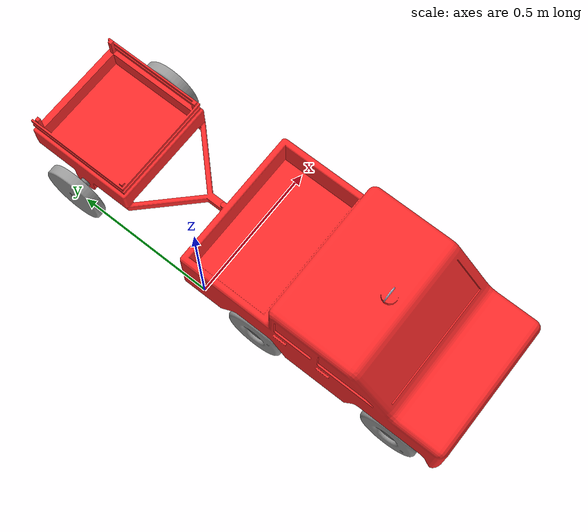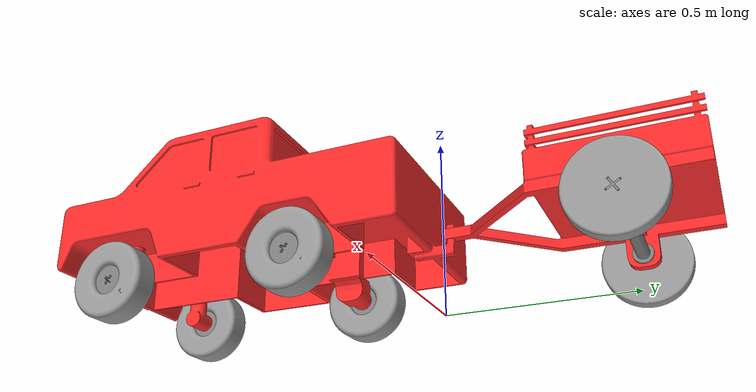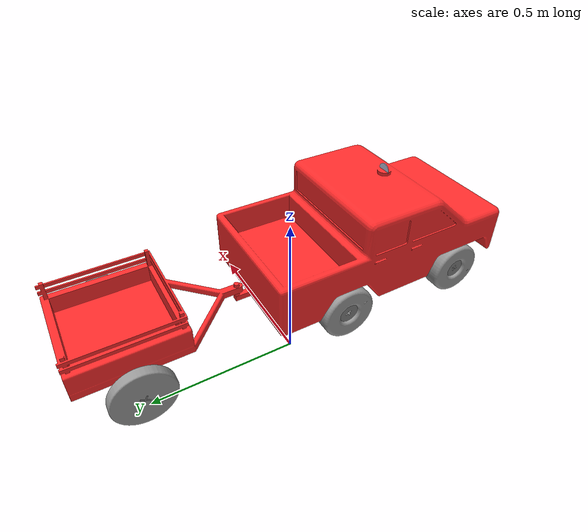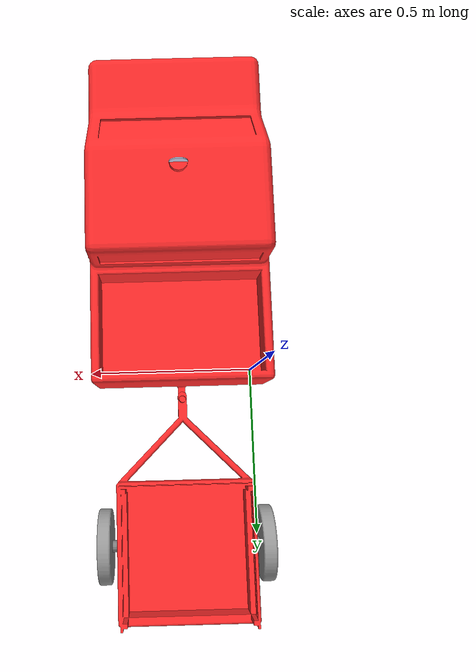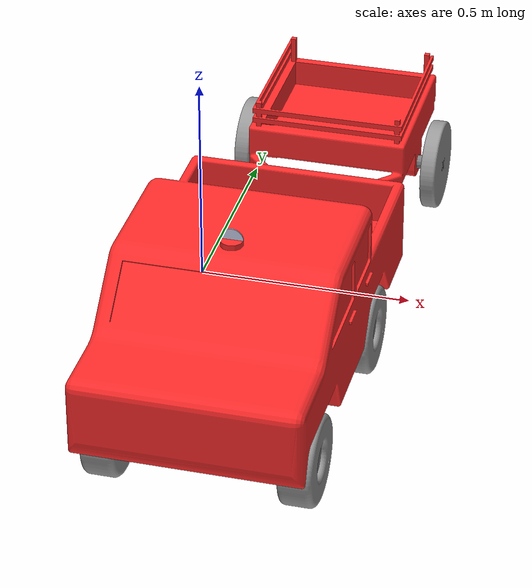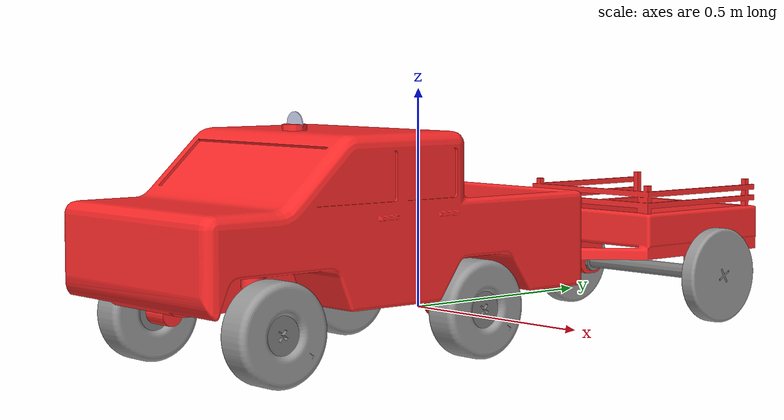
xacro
<?xml version="1.0" ?>
<robot
  name="project_1_group_2" xmlns:xacro="http://ros.org/wiki/xacro">

  <xacro:macro name="red_color">
      <visual>
      <material>
          <ambient>1 0.168627450980392 0.168627450980392 1</ambient>
          <diffuse>1 0.168627450980392 0.168627450980392 1</diffuse>
          <specular>0.1 0.1 0.1 1</specular>
          <emissive>0 0 0 0</emissive>
      </material>
      </visual>
  </xacro:macro>

  <xacro:macro name="grey_color">
      <visual>
      <material>
          <ambient>0.8 0.558823529411765 0.1 1</ambient>
          <diffuse>0.8 0.558823529411765 0.1 1</diffuse>
          <specular>0.1 0.1 0.1 1</specular>
          <emissive>0 0 0 0</emissive>
      </material>
      </visual>
  </xacro:macro>

  <xacro:macro name="black_color">
      <visual>
      <material>
          <ambient>0.6 0.6 0.6 1</ambient>
          <diffuse>0.6 0.6 0.6 1</diffuse>
          <specular>0.1 0.1 0.1 1</specular>
          <emissive>0 0 0 0</emissive>
      </material>
      </visual>
  </xacro:macro>

  # Add this before base link
  <link name="dummy_link"></link>

  <link
    name="base_link">
    <inertial>
      <origin
        xyz="0.219542184923656 0.253147662670064 0.488981343790689"
        rpy="0 0 0" />
      <mass
        value="1" />
      <inertia
        ixx="3.47686976214323"
        ixy="1.28363813560472E-06"
        ixz="-8.67881754875189E-06"
        iyy="4.33091580677011"
        iyz="-0.0565812633669083"
        izz="1.5150564663539" />
    </inertial>
    <visual>
      <origin
        xyz="0 0 0"
        rpy="0 0 0" />
      <geometry>
        <mesh
          filename="package://project_1_group_2/meshes/base_link.STL" />
      </geometry>
      <material
        name="">
        <color
          rgba="1 0.168627450980392 0.168627450980392 1" />
      </material>
    </visual>
    <collision>
      <origin
        xyz="0 0 0"
        rpy="0 0 0" />
      <geometry>
        <mesh
          filename="package://project_1_group_2/meshes/base_link.STL" />
      </geometry>
    </collision>
  </link>

    # Add this after base link
  <joint
    name="dummy_joint"
    type="fixed">
    <origin
      rpy="0 0 0"
      xyz="0 0 0" />
    <parent
      link="dummy_link"/>
    <child
      link="base_link"/>
  </joint>

  <link
    name="steering_wheel_1">
    <inertial>
      <origin
        xyz="2.86075080291326E-08 -0.0749063419355981 -0.00254051949689645"
        rpy="0 0 0" />
      <mass
        value="15.295424107267105" />
      <inertia
        ixx="0.000710809060839366"
        ixy="-1.53957020615015E-10"
        ixz="-3.53322320543782E-10"
        iyy="0.000104054571155282"
        iyz="3.85934455800395E-05"
        izz="0.000690101015602262" />
    </inertial>
    <visual>
      <origin
        xyz="0 0 0"
        rpy="0 0 0" />
      <geometry>
        <mesh
          filename="package://project_1_group_2/meshes/steering_wheel_1.STL" />
      </geometry>
      <material
        name="">
        <color
          rgba="1 0.168627450980392 0.168627450980392 1" />
      </material>
    </visual>
    <collision>
      <origin
        xyz="0 0 0"
        rpy="0 0 0" />
      <geometry>
        <mesh
          filename="package://project_1_group_2/meshes/steering_wheel_1.STL" />
      </geometry>
    </collision>
  </link>
  <joint
    name="steering_joint_1"
    type="revolute">
    <origin
      xyz="0.070952 -0.7342 0.035594"
      rpy="-1.5708 0 -1.5708" />
    <parent
      link="base_link" />
    <child
      link="steering_wheel_1" />
    <axis
      xyz="0 -1 0" />
    <limit
      lower="-3.14"
      upper="3.14"
      effort="10"
      velocity="10" />
  </joint>
  <link
    name="wheel_1">
    <inertial>
      <origin
        xyz="0 0.0251005990323743 0"
        rpy="0 0 0" />
      <mass
        value="2.217134053712094" />
      <inertia
        ixx="0.000126052696684198"
        ixy="-3.30911918449584E-21"
        ixz="6.7762635780344E-21"
        iyy="0.000159854355976214"
        iyz="-7.03947290074457E-21"
        izz="0.000126052696684198" />
    </inertial>
    <visual>
      <origin
        xyz="0 0 0"
        rpy="0 0 0" />
      <geometry>
        <mesh
          filename="package://project_1_group_2/meshes/wheel_1.STL" />
      </geometry>
      <material
        name="">
        <color
          rgba="0.498039215686275 0.498039215686275 0.498039215686275 1" />
      </material>
    </visual>
    <collision>
      <origin
        xyz="0 0 0"
        rpy="0 0 0" />
      <geometry>
        <mesh
          filename="package://project_1_group_2/meshes/wheel_1.STL" />
      </geometry>
    </collision>
  </link>
  <joint
    name="wheel_1_joint"
    type="continuous">
    <origin
      xyz="0 -0.0234950000000001 -0.040767"
      rpy="-1.5707963267949 0 -1.16226628629428" />
    <parent
      link="steering_wheel_1" />
    <child
      link="wheel_1" />
    <axis
      xyz="0 1 0" />
  </joint>
  <link
    name="tire_1">
    <inertial>
      <origin
        xyz="0 0.0380963424606702 -6.9367125220543E-06"
        rpy="0 0 0" />
      <mass
        value="1.9636352752673" />
      <inertia
        ixx="0.00664149361787531"
        ixy="3.02337822610582E-19"
        ixz="2.16840434497101E-19"
        iyy="0.0114725337233255"
        iyz="5.01717636400841E-07"
        izz="0.00664244711710664" />
      </inertial>
    <visual>
      <origin
        xyz="0 0 0"
        rpy="0 0 0" />
      <geometry>
        <mesh
          filename="package://project_1_group_2/meshes/tire_1.STL" />
      </geometry>
      <material
        name="">
        <color
          rgba="0.6 0.6 0.6 1" />
      </material>
    </visual>
    <collision>
      <origin
        xyz="0 0 0"
        rpy="0 0 0" />
      <geometry>
        <mesh
          filename="package://project_1_group_2/meshes/tire_1.STL" />
      </geometry>
    </collision>
  </link>
  <joint
    name="tire_1_joint"
    type="fixed">
    <origin
      xyz="0 -0.0127000000000001 0"
      rpy="0 0 0" />
    <parent
      link="wheel_1" />
    <child
      link="tire_1" />
    <axis
      xyz="0 0 0" />
  </joint>
  <link
    name="steering_wheel_2">
    <inertial>
      <origin
        xyz="2.86075079181103E-08 0.074906341935598 0.00254051949689649"
        rpy="0 0 0" />
      <mass
        value="15.295424107267105" />
      <inertia
        ixx="0.000710809060839365"
        ixy="1.53957021878157E-10"
        ixz="3.53322320610221E-10"
        iyy="0.000104054571155282"
        iyz="3.85934455800397E-05"
        izz="0.000690101015602261" />
    </inertial>
    <visual>
      <origin
        xyz="0 0 0"
        rpy="0 0 0" />
      <geometry>
        <mesh
          filename="package://project_1_group_2/meshes/steering_wheel_2.STL" />
      </geometry>
      <material
        name="">
        <color
          rgba="1 0.168627450980392 0.168627450980392 1" />
      </material>
    </visual>
    <collision>
      <origin
        xyz="0 0 0"
        rpy="0 0 0" />
      <geometry>
        <mesh
          filename="package://project_1_group_2/meshes/steering_wheel_2.STL" />
      </geometry>
    </collision>
  </link>
  <joint
    name="steering_joint_2"
    type="revolute">
    <origin
      xyz="0.36813 -0.7342 0.035594"
      rpy="1.5708 0 1.5708" />
    <parent
      link="base_link" />
    <child
      link="steering_wheel_2" />
    <axis
      xyz="0 -1 0" />
    <limit
      lower="-3.14"
      upper="3.14"
      effort="100"
      velocity="10" />
  </joint>
  <link
    name="wheel_2">
    <inertial>
      <origin
        xyz="0 0.0251005990323743 0"
        rpy="0 0 0" />
      <mass
        value="2.217134053712094" />
      <inertia
        ixx="0.000126052696684198"
        ixy="-2.42959470068895E-21"
        ixz="0"
        iyy="0.000159854355976214"
        iyz="-1.47427383956479E-20"
        izz="0.000126052696684198" />
    </inertial>
    <visual>
      <origin
        xyz="0 0 0"
        rpy="0 0 0" />
      <geometry>
        <mesh
          filename="package://project_1_group_2/meshes/wheel_2.STL" />
      </geometry>
      <material
        name="">
        <color
          rgba="0.498039215686275 0.498039215686275 0.498039215686275 1" />
      </material>
    </visual>
    <collision>
      <origin
        xyz="0 0 0"
        rpy="0 0 0" />
      <geometry>
        <mesh
          filename="package://project_1_group_2/meshes/wheel_2.STL" />
      </geometry>
    </collision>
  </link>
  <joint
    name="wheel_2_joint"
    type="continuous">
    <origin
      xyz="0 0.0234950000000022 0.0407670000000003"
      rpy="1.5707963267949 0 0.927408187420047" />
    <parent
      link="steering_wheel_2" />
    <child
      link="wheel_2" />
    <axis
      xyz="0 1 0" />
  </joint>
  <link
    name="tire_2">
    <inertial>
      <origin
        xyz="-5.55111512312578E-17 0.0380963424606702 -6.93671252216532E-06"
        rpy="0 0 0" />
      <mass
        value="1.9636352752673" />
      <inertia
        ixx="0.00664149361787532"
        ixy="5.1086674631275E-20"
        ixz="-2.16840434497101E-19"
        iyy="0.0114725337233255"
        iyz="5.01717636401181E-07"
        izz="0.00664244711710664" />
    </inertial>
    <visual>
      <origin
        xyz="0 0 0"
        rpy="0 0 0" />
      <geometry>
        <mesh
          filename="package://project_1_group_2/meshes/tire_2.STL" />
      </geometry>
      <material
        name="">
        <color
          rgba="0.6 0.6 0.6 1" />
      </material>
    </visual>
    <collision>
      <origin
        xyz="0 0 0"
        rpy="0 0 0" />
      <geometry>
        <mesh
          filename="package://project_1_group_2/meshes/tire_2.STL" />
      </geometry>
    </collision>
  </link>
  <joint
    name="tire_2_joint"
    type="fixed">
    <origin
      xyz="0 -0.0126999999999999 0"
      rpy="0 0 0" />
    <parent
      link="wheel_2" />
    <child
      link="tire_2" />
    <axis
      xyz="0 0 0" />
  </joint>
  <link
    name="drive_wheel_1">
    <inertial>
      <origin
        xyz="0 -0.00140110038134092 0"
        rpy="0 0 0" />
      <mass
        value="0.217134053712094" />
      <inertia
        ixx="0.000126052696684197"
        ixy="3.65980047539585E-21"
        ixz="-6.7762635780344E-21"
        iyy="0.000159854355976214"
        iyz="-7.39817207392887E-22"
        izz="0.000126052696684197" />
    </inertial>
    <visual>
      <origin
        xyz="0 0 0"
        rpy="0 0 0" />
      <geometry>
        <mesh
          filename="package://project_1_group_2/meshes/drive_wheel_1.STL" />
      </geometry>
      <material
        name="">
        <color
          rgba="0.498039215686275 0.498039215686275 0.498039215686275 1" />
      </material>
    </visual>
    <collision>
      <origin
        xyz="0 0 0"
        rpy="0 0 0" />
      <geometry>
        <mesh
          filename="package://project_1_group_2/meshes/drive_wheel_1.STL" />
      </geometry>
    </collision>
  </link>
  <joint
    name="drive_wheel_1_joint"
    type="continuous">
    <origin
      xyz="0 -0.2262 0.061675"
      rpy="0 -1.0561 1.5708" />
    <parent
      link="base_link" />
    <child
      link="drive_wheel_1" />
    <axis
      xyz="0 -1 0" />
  </joint>
  <link
    name="drive_tire_1">
    <inertial>
      <origin
        xyz="2.08166817117217E-17 0.0380963424606702 -6.93671252210981E-06"
        rpy="0 0 0" />
      <mass
        value="1.9636352752673" />
      <inertia
        ixx="0.00664149361787532"
        ixy="6.09678433565884E-19"
        ixz="8.67361737988404E-19"
        iyy="0.0114725337233256"
        iyz="5.01717636401377E-07"
        izz="0.00664244711710664" />
    </inertial>
    <visual>
      <origin
        xyz="0 0 0"
        rpy="0 0 0" />
      <geometry>
        <mesh
          filename="package://project_1_group_2/meshes/drive_tire_1.STL" />
      </geometry>
      <material
        name="">
        <color
          rgba="0.6 0.6 0.6 1" />
      </material>
    </visual>
    <collision>
      <origin
        xyz="0 0 0"
        rpy="0 0 0" />
      <geometry>
        <mesh
          filename="package://project_1_group_2/meshes/drive_tire_1.STL" />
      </geometry>
    </collision>
  </link>
  <joint
    name="drive_tire_1_joint"
    type="fixed">
    <origin
      xyz="0 -0.0392016994137152 0"
      rpy="0 0 0" />
    <parent
      link="drive_wheel_1" />
    <child
      link="drive_tire_1" />
    <axis
      xyz="0 0 0" />
  </joint>
  <link
    name="drive_wheel_2">
    <inertial>
      <origin
        xyz="0 0.0251005990323744 0"
        rpy="0 0 0" />
      <mass
        value="0.217134053712094" />
      <inertia
        ixx="0.000126052696684197"
        ixy="-5.05000906564327E-21"
        ixz="1.01643953670516E-20"
        iyy="0.000159854355976214"
        iyz="3.01026101938204E-21"
        izz="0.000126052696684198" />
    </inertial>
    <visual>
      <origin
        xyz="0 0 0"
        rpy="0 0 0" />
      <geometry>
        <mesh
          filename="package://project_1_group_2/meshes/drive_wheel_2.STL" />
      </geometry>
      <material
        name="">
        <color
          rgba="0.498039215686275 0.498039215686275 0.498039215686275 1" />
      </material>
    </visual>
    <collision>
      <origin
        xyz="0 0 0"
        rpy="0 0 0" />
      <geometry>
        <mesh
          filename="package://project_1_group_2/meshes/drive_wheel_2.STL" />
      </geometry>
    </collision>
  </link>
  <joint
    name="drive_wheel_2_joint"
    type="continuous">
    <origin
      xyz="0.41258 -0.2262 0.061675"
      rpy="0 0.9434 -1.5708" />
    <parent
      link="base_link" />
    <child
      link="drive_wheel_2" />
    <axis
      xyz="0 -1 0" />
  </joint>
  <link
    name="drive_tire_2">
    <inertial>
      <origin
        xyz="2.77555756156289E-17 0.0380963424606702 -6.93671252208206E-06"
        rpy="0 0 0" />
      <mass
        value="1.9636352752673" />
      <inertia
        ixx="0.00664149361787531"
        ixy="3.34048618573415E-19"
        ixz="6.50521303491303E-19"
        iyy="0.0114725337233255"
        iyz="5.0171763640111E-07"
        izz="0.00664244711710664" />
    </inertial>
    <visual>
      <origin
        xyz="0 0 0"
        rpy="0 0 0" />
      <geometry>
        <mesh
          filename="package://project_1_group_2/meshes/drive_tire_2.STL" />
      </geometry>
      <material
        name="">
        <color
          rgba="0.6 0.6 0.6 1" />
      </material>
    </visual>
    <collision>
      <origin
        xyz="0 0 0"
        rpy="0 0 0" />
      <geometry>
        <mesh
          filename="package://project_1_group_2/meshes/drive_tire_2.STL" />
      </geometry>
    </collision>
  </link>
  <joint
    name="drive_tire_2_joint"
    type="fixed">
    <origin
      xyz="0 -0.0126999999999999 0"
      rpy="3.14159265358979 0 3.14159265358979" />
    <parent
      link="drive_wheel_2" />
    <child
      link="drive_tire_2" />
    <axis
      xyz="0 0 0" />
  </joint>
  <link
    name="trailer">
    <inertial>
      <origin
        xyz="-2.14872014431267E-07 0.122240676993307 0.407195343988752"
        rpy="0 0 0" />
      <mass
        value="0.5" />
      <inertia
        ixx="0.106926412723749"
        ixy="-2.14631197863797E-08"
        ixz="-2.44065610516401E-07"
        iyy="0.204818186461493"
        iyz="-0.00158445646443877"
        izz="0.111161118457744" />
    </inertial>
    <visual>
      <origin
        xyz="0 0 0"
        rpy="0 0 0" />
      <geometry>
        <mesh
          filename="package://project_1_group_2/meshes/trailer.STL" />
      </geometry>
      <material
        name="">
        <color
          rgba="1 0.168627450980392 0.168627450980392 1" />
      </material>
    </visual>
    <collision>
      <origin
        xyz="0 0 0"
        rpy="0 0 0" />
      <geometry>
        <mesh
          filename="package://project_1_group_2/meshes/trailer.STL" />
      </geometry>
    </collision>
  </link>
  <joint
    name="trailer_joint"
    type="continuous">
    <origin
      xyz="0.21954 0.093844 0.041004"
      rpy="1.5708 0 3.1416" />
    <parent
      link="base_link" />
    <child
      link="trailer" />
    <axis
      xyz="0 1 0" />
  </joint>
  <link
    name="trailer_axle">
    <inertial>
      <origin
        xyz="0 -2.4980018054066E-16 0"
        rpy="0 0 0" />
      <mass
        value="0.388537069771013" />
      <inertia
        ixx="0.00709487470732702"
        ixy="4.69749067079451E-19"
        ixz="0"
        iyy="5.66992976163243E-05"
        iyz="2.01714087208509E-19"
        izz="0.00709487470732702" />
    </inertial>
    <visual>
      <origin
        xyz="0 0 0"
        rpy="0 0 0" />
      <geometry>
        <mesh
          filename="package://project_1_group_2/meshes/trailer_axle.STL" />
      </geometry>
      <material
        name="">
        <color
          rgba="0.498039215686275 0.498039215686275 0.498039215686275 1" />
      </material>
    </visual>
    <collision>
      <origin
        xyz="0 0 0"
        rpy="0 0 0" />
      <geometry>
        <mesh
          filename="package://project_1_group_2/meshes/trailer_axle.STL" />
      </geometry>
    </collision>
  </link>
  <joint
    name="trailer_axle_joint"
    type="continuous">
    <origin
      xyz="0 0.0312032475847516 0.422121581912838"
      rpy="0 -0.538949692004304 -1.5707963267949" />
    <parent
      link="trailer" />
    <child
      link="trailer_axle" />
    <axis
      xyz="0 1 0" />
  </joint>
  <link
    name="trailer_wheel_1">
    <inertial>
      <origin
        xyz="2.77555756156289E-17 -5.55111512312578E-17 0.01905"
        rpy="0 0 0" />
      <mass
        value="1.30378374657888" />
      <inertia
        ixx="0.00396064889398226"
        ixy="-2.16840434497101E-19"
        ixz="-1.43965953811448E-19"
        iyy="0.00396064889398226"
        iyz="2.23294111251937E-19"
        izz="0.00761008083736416" />
    </inertial>
    <visual>
      <origin
        xyz="0 0 0"
        rpy="0 0 0" />
      <geometry>
        <mesh
          filename="package://project_1_group_2/meshes/trailer_wheel_1.STL" />
      </geometry>
      <material
        name="">
        <color
          rgba="0.6 0.6 0.6 1" />
      </material>
    </visual>
    <collision>
      <origin
        xyz="0 0 0"
        rpy="0 0 0" />
      <geometry>
        <mesh
          filename="package://project_1_group_2/meshes/trailer_wheel_1.STL" />
      </geometry>
    </collision>
  </link>
  <joint
    name="trailer_wheel_1_joint"
    type="fixed">
    <origin
      xyz="0 0.2159 0"
      rpy="-1.5707963267949 0 0" />
    <parent
      link="trailer_axle" />
    <child
      link="trailer_wheel_1" />
    <axis
      xyz="0 0 0" />
  </joint>
  <link
    name="trailer_wheel_2">
    <inertial>
      <origin
        xyz="5.55111512312578E-17 5.55111512312578E-17 0.01905"
        rpy="0 0 0" />
      <mass
        value="1.30378374657888" />
      <inertia
        ixx="0.00396064889398225"
        ixy="3.25260651745651E-19"
        ixz="-1.14918482212615E-18"
        iyy="0.00396064889398226"
        iyz="-5.07286706220775E-18"
        izz="0.00761008083736415" />
    </inertial>
    <visual>
      <origin
        xyz="0 0 0"
        rpy="0 0 0" />
      <geometry>
        <mesh
          filename="package://project_1_group_2/meshes/trailer_wheel_2.STL" />
      </geometry>
      <material
        name="">
        <color
          rgba="0.6 0.6 0.6 1" />
      </material>
    </visual>
    <collision>
      <origin
        xyz="0 0 0"
        rpy="0 0 0" />
      <geometry>
        <mesh
          filename="package://project_1_group_2/meshes/trailer_wheel_2.STL" />
      </geometry>
    </collision>
  </link>
  <joint
    name="trailer_wheel_2_joint"
    type="fixed">
    <origin
      xyz="0 -0.2159 0"
      rpy="-1.5707963267949 0 3.14159265358979" />
    <parent
      link="trailer_axle" />
    <child
      link="trailer_wheel_2" />
    <axis
      xyz="0 0 0" />
  </joint>
  <link
    name="lidar_link">
    <inertial>
      <origin
        xyz="0 0.00127000000000005 0"
        rpy="0 0 0" />
      <mass
        value="0.00514814798763055" />
      <inertia
        ixx="8.33112604888014E-07"
        ixy="-3.20922964057601E-40"
        ixz="0"
        iyy="1.66068957784986E-06"
        iyz="2.8186396765545E-40"
        izz="8.33112604888014E-07" />
    </inertial>
    <visual>
      <origin
        xyz="0 0 0"
        rpy="0 0 0" />
      <geometry>
        <mesh
          filename="package://project_1_group_2/meshes/lidar_link.STL" />
      </geometry>
      <material
        name="">
        <color
          rgba="0.792156862745098 0.819607843137255 0.933333333333333 1" />
      </material>
    </visual>
    <collision>
      <origin
        xyz="0 0 0"
        rpy="0 0 0" />
      <geometry>
        <mesh
          filename="package://project_1_group_2/meshes/lidar_link.STL" />
      </geometry>
    </collision>
  </link>
  <joint
    name="lidar_joint"
    type="fixed">
    <origin
      xyz="0.219541699413715 -0.521188368096002 0.439623181973066"
      rpy="0 0 0" />
    <parent
      link="base_link" />
    <child
      link="lidar_link" />
    <axis
      xyz="0 0 1" />
  </joint>

  <ros2_control name="GazeboSystem" type="system">
  <hardware>
      <plugin>gazebo_ros2_control/GazeboSystem</plugin>
  </hardware>

  <joint name="drive_wheel_1_joint">
      <command_interface name="velocity">
          <param name="min">-100.0</param>
          <param name="max">100.0</param>
      </command_interface>
      <state_interface name="position"/>
      <state_interface name="velocity"/>
  </joint>

  <joint name="drive_wheel_2_joint">
      <command_interface name="velocity">
          <param name="min">-100.0</param>
          <param name="max">100.0</param>
      </command_interface>
      <state_interface name="position"/>
      <state_interface name="velocity"/>
  </joint>

  <joint name="steering_joint_1">
        <command_interface name="position">
            <param name="min">-3.14</param>
            <param name="max">3.14</param>
        </command_interface>
        <state_interface name="position"/>
        <state_interface name="velocity"/>
    </joint>

    <joint name="steering_joint_2">
        <command_interface name="position">
            <param name="min">-3.14</param>
            <param name="max">3.14</param>
        </command_interface>
        <state_interface name="position"/>
        <state_interface name="velocity"/>
    </joint>

  </ros2_control>

  <gazebo>
      <plugin filename="libgazebo_ros2_control.so" name="gazebo_ros2_control">
          <parameters>$(find project_1_group_2)/config/control.yaml</parameters>
      </plugin>
  </gazebo>

  <gazebo reference="base_link">
    <xacro:red_color />
  </gazebo>

  <gazebo reference="steering_wheel_1">
    <xacro:red_color />
  </gazebo>

  <gazebo reference="steering_wheel_2">
    <xacro:red_color />
  </gazebo>

  <gazebo reference="wheel_1">
    <xacro:grey_color />
  </gazebo>

  <gazebo reference="wheel_2">
    <xacro:grey_color />
  </gazebo>

  <gazebo reference="tire_1">
    <xacro:black_color />
  </gazebo>

  <gazebo reference="tire_2">
    <xacro:black_color />
  </gazebo>

  <gazebo reference="drive_wheel_1">
    <xacro:grey_color />
  </gazebo>

  <gazebo reference="drive_wheel_2">
    <xacro:grey_color />
  </gazebo>

  <gazebo reference="drive_tire_1">
    <xacro:black_color />
  </gazebo>

  <gazebo reference="drive_tire_2">
    <xacro:black_color />
  </gazebo>

  <gazebo reference="trailer">
    <xacro:red_color />
  </gazebo>

  <gazebo reference="trailer_axle">
    <xacro:grey_color />
  </gazebo>

  <gazebo reference="trailer_wheel_1">
    <xacro:black_color />
  </gazebo>

  <gazebo reference="trailer_wheel_2">
    <xacro:black_color />
  </gazebo>

  <gazebo reference="lidar_link">
    <xacro:black_color />
  </gazebo>

  <gazebo reference="lidar_link">
  <sensor name="lidar" type="ray">
    <pose>0.0 0.0 0.0 1.57 0 0</pose>
    <always_on>true</always_on>
    <visualize>true</visualize>
    <update_rate>5</update_rate>
    <ray>
      <scan>
        <horizontal>
          <samples>360</samples>
          <resolution>1.00000</resolution>
          <min_angle>0.000000</min_angle>
          <max_angle>6.280000</max_angle>
        </horizontal>
      </scan>
      <range>
        <min>0.120000</min>
        <max>3.5</max>
        <resolution>0.015000</resolution>
      </range>
      <noise>
        <type>gaussian</type>
        <mean>0.0</mean>
        <stddev>0.01</stddev>
      </noise>
    </ray>
    <plugin name="scan" filename="libgazebo_ros_ray_sensor.so">
      <ros>
        <remapping>~/out:=scan</remapping>
      </ros>
      <output_type>sensor_msgs/LaserScan</output_type>
      <frame_name>lidar_link</frame_name>
    </plugin>
  </sensor>
  </gazebo>

  <gazebo>
  <plugin filename="libodometry_plugin.so" name="odometry_plugin">
    <!-- Name of the link for which the odometry is required -->
    <frame>dummy_link</frame>
    <!-- Any arbitray name for the world frame -->
    <world_frame>map</world_frame>
  </plugin>
  </gazebo>

  <gazebo reference="base_link">
  <gravity>true</gravity>
  <sensor name="imu_sensor" type="imu">
    <always_on>true</always_on>
    <update_rate>100</update_rate>
    <visualize>true</visualize>
    <topic>__default_topic__</topic>
    <plugin filename="libgazebo_ros_imu_sensor.so" name="imu_plugin">
      <topicName>imu</topicName>
      <bodyName>base_link</bodyName>
      <updateRateHZ>1.0</updateRateHZ>
      <gaussianNoise>0.0</gaussianNoise>
      <xyzOffset>0 0 0</xyzOffset>
      <rpyOffset>0 0 0</rpyOffset>
      <frameName>base_link</frameName>
      <initialOrientationAsReference>false</initialOrientationAsReference>
    </plugin>
    <pose>0 0 0 0 0 0</pose>
  </sensor>
</gazebo>

</robot>
